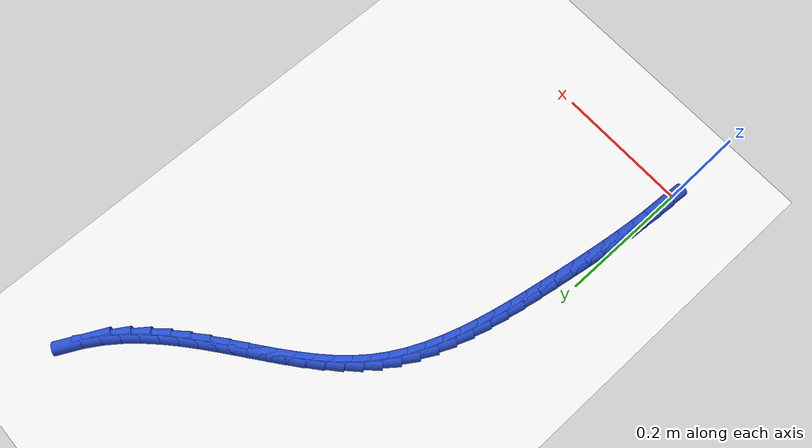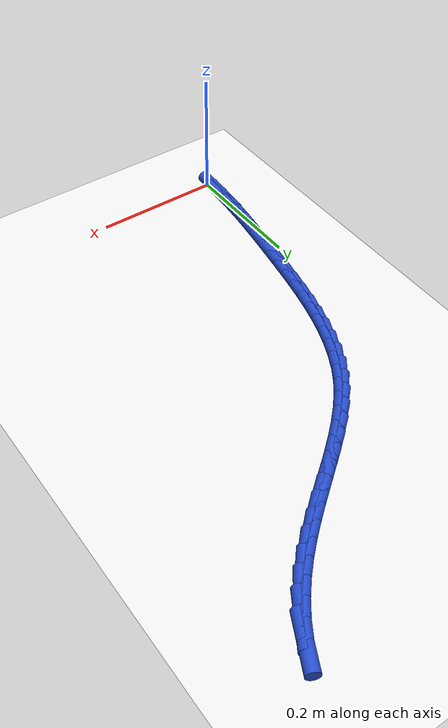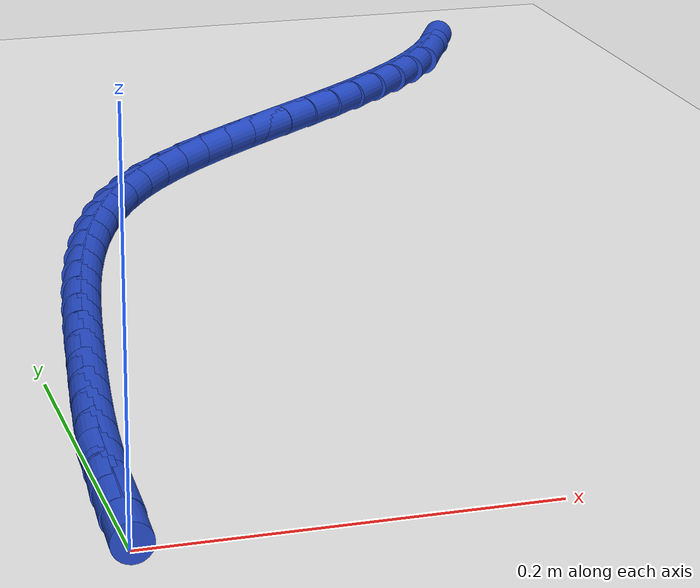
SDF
<sdf version="1.6">
 <world name="default">
  <model name="ground_plane">
   <static>1</static>
   <link name="link">
    <collision name="collision">
     <geometry><plane><normal>0 0 1</normal><size>100 100</size></plane></geometry>
     <surface><friction><ode><mu>100</mu><mu2>50</mu2></ode></friction></surface>
    </collision>
    <visual name="visual">
     <cast_shadows>0</cast_shadows>
     <geometry><plane><normal>0 0 1</normal><size>100 100</size></plane></geometry>
     <material>
      <script><uri>file://media/materials/scripts/gazebo.material</uri><name>Gazebo/WhiteGlow</name></script>
     </material>
    </visual>
   </link>
  </model>
  <model name="line">
   <link name="link_1">
    <pose>0.0009345551304918238 0.026093960901093137 0.01 0 1.57 1.5084178940922301</pose>
    <collision name="collision">
     <geometry><cylinder><radius>0.01</radius><length>0.08</length></cylinder></geometry>
    </collision>
    <visual name="visual">
     <material>
      <script><name>Gazebo/Blue</name><uri>file://media/materials/scripts/gazebo.material</uri></script>
     </material>
     <geometry><cylinder><radius>0.01</radius><length>0.08</length></cylinder></geometry>
    </visual>
   </link>
   <link name="link_2">
    <pose>0.002554962909086989 0.05203731114249139 0.01 0 1.57 1.484605600126524</pose>
    <collision name="collision">
     <geometry><cylinder><radius>0.01</radius><length>0.08</length></cylinder></geometry>
    </collision>
    <visual name="visual">
     <material>
      <script><name>Gazebo/Blue</name><uri>file://media/materials/scripts/gazebo.material</uri></script>
     </material>
     <geometry><cylinder><radius>0.01</radius><length>0.08</length></cylinder></geometry>
    </visual>
   </link>
   <link name="link_3">
    <pose>0.004788108155978377 0.0778824652375783 0.01 0 1.57 1.4637330595707476</pose>
    <collision name="collision">
     <geometry><cylinder><radius>0.01</radius><length>0.08</length></cylinder></geometry>
    </collision>
    <visual name="visual">
     <material>
      <script><name>Gazebo/Blue</name><uri>file://media/materials/scripts/gazebo.material</uri></script>
     </material>
     <geometry><cylinder><radius>0.01</radius><length>0.08</length></cylinder></geometry>
    </visual>
   </link>
   <link name="link_4">
    <pose>0.007560875691358856 0.10368183769973745 0.01 0 1.57 1.445925364941991</pose>
    <collision name="collision">
     <geometry><cylinder><radius>0.01</radius><length>0.08</length></cylinder></geometry>
    </collision>
    <visual name="visual">
     <material>
      <script><name>Gazebo/Blue</name><uri>file://media/materials/scripts/gazebo.material</uri></script>
     </material>
     <geometry><cylinder><radius>0.01</radius><length>0.08</length></cylinder></geometry>
    </visual>
   </link>
   <link name="link_5">
    <pose>0.010800150335421317 0.1294878430423524 0.01 0 1.57 1.4312620993877605</pose>
    <collision name="collision">
     <geometry><cylinder><radius>0.01</radius><length>0.08</length></cylinder></geometry>
    </collision>
    <visual name="visual">
     <material>
      <script><name>Gazebo/Blue</name><uri>file://media/materials/scripts/gazebo.material</uri></script>
     </material>
     <geometry><cylinder><radius>0.01</radius><length>0.08</length></cylinder></geometry>
    </visual>
   </link>
   <link name="link_6">
    <pose>0.014432816908358619 0.15535289577880662 0.01 0 1.57 1.419781155389304</pose>
    <collision name="collision">
     <geometry><cylinder><radius>0.01</radius><length>0.08</length></cylinder></geometry>
    </collision>
    <visual name="visual">
     <material>
      <script><name>Gazebo/Blue</name><uri>file://media/materials/scripts/gazebo.material</uri></script>
     </material>
     <geometry><cylinder><radius>0.01</radius><length>0.08</length></cylinder></geometry>
    </visual>
   </link>
   <link name="link_7">
    <pose>0.018385760230363646 0.18132941042248377 0.01 0 1.57 1.4114830737807074</pose>
    <collision name="collision">
     <geometry><cylinder><radius>0.01</radius><length>0.08</length></cylinder></geometry>
    </collision>
    <visual name="visual">
     <material>
      <script><name>Gazebo/Blue</name><uri>file://media/materials/scripts/gazebo.material</uri></script>
     </material>
     <geometry><cylinder><radius>0.01</radius><length>0.08</length></cylinder></geometry>
    </visual>
   </link>
   <link name="link_8">
    <pose>0.02258586512162927 0.20746980148676736 0.01 0 1.57 1.406204926121847</pose>
    <collision name="collision">
     <geometry><cylinder><radius>0.01</radius><length>0.08</length></cylinder></geometry>
    </collision>
    <visual name="visual">
     <material>
      <script><name>Gazebo/Blue</name><uri>file://media/materials/scripts/gazebo.material</uri></script>
     </material>
     <geometry><cylinder><radius>0.01</radius><length>0.08</length></cylinder></geometry>
    </visual>
   </link>
   <link name="link_9">
    <pose>0.02696309861841557 0.23382376049771153 0.01 0 1.57 1.3995858988335756</pose>
    <collision name="collision">
     <geometry><cylinder><radius>0.01</radius><length>0.08</length></cylinder></geometry>
    </collision>
    <visual name="visual">
     <material>
      <script><name>Gazebo/Blue</name><uri>file://media/materials/scripts/gazebo.material</uri></script>
     </material>
     <geometry><cylinder><radius>0.01</radius><length>0.08</length></cylinder></geometry>
    </visual>
   </link>
   <link name="link_10">
    <pose>0.031549680913267784 0.260350643312851 0.01 0 1.57 1.3864131929045387</pose>
    <collision name="collision">
     <geometry><cylinder><radius>0.01</radius><length>0.08</length></cylinder></geometry>
    </collision>
    <visual name="visual">
     <material>
      <script><name>Gazebo/Blue</name><uri>file://media/materials/scripts/gazebo.material</uri></script>
     </material>
     <geometry><cylinder><radius>0.01</radius><length>0.08</length></cylinder></geometry>
    </visual>
   </link>
   <link name="link_11">
    <pose>0.036501308648437494 0.28690072037821956 0.01 0 1.57 1.366264666740674</pose>
    <collision name="collision">
     <geometry><cylinder><radius>0.01</radius><length>0.08</length></cylinder></geometry>
    </collision>
    <visual name="visual">
     <material>
      <script><name>Gazebo/Blue</name><uri>file://media/materials/scripts/gazebo.material</uri></script>
     </material>
     <geometry><cylinder><radius>0.01</radius><length>0.08</length></cylinder></geometry>
    </visual>
   </link>
   <link name="link_12">
    <pose>0.041981052725971885 0.31331774734155327 0.01 0 1.57 1.3388633902541338</pose>
    <collision name="collision">
     <geometry><cylinder><radius>0.01</radius><length>0.08</length></cylinder></geometry>
    </collision>
    <visual name="visual">
     <material>
      <script><name>Gazebo/Blue</name><uri>file://media/materials/scripts/gazebo.material</uri></script>
     </material>
     <geometry><cylinder><radius>0.01</radius><length>0.08</length></cylinder></geometry>
    </visual>
   </link>
   <link name="link_13">
    <pose>0.048151984047918164 0.33944547985058865 0.01 0 1.57 1.3037849943275877</pose>
    <collision name="collision">
     <geometry><cylinder><radius>0.01</radius><length>0.08</length></cylinder></geometry>
    </collision>
    <visual name="visual">
     <material>
      <script><name>Gazebo/Blue</name><uri>file://media/materials/scripts/gazebo.material</uri></script>
     </material>
     <geometry><cylinder><radius>0.01</radius><length>0.08</length></cylinder></geometry>
    </visual>
   </link>
   <link name="link_14">
    <pose>0.055177173516323515 0.36512767355306164 0.01 0 1.57 1.2604863405628066</pose>
    <collision name="collision">
     <geometry><cylinder><radius>0.01</radius><length>0.08</length></cylinder></geometry>
    </collision>
    <visual name="visual">
     <material>
      <script><name>Gazebo/Blue</name><uri>file://media/materials/scripts/gazebo.material</uri></script>
     </material>
     <geometry><cylinder><radius>0.01</radius><length>0.08</length></cylinder></geometry>
    </visual>
   </link>
   <link name="link_15">
    <pose>0.06321969203323519 0.3902080840967089 0.01 0 1.57 1.2083532021715735</pose>
    <collision name="collision">
     <geometry><cylinder><radius>0.01</radius><length>0.08</length></cylinder></geometry>
    </collision>
    <visual name="visual">
     <material>
      <script><name>Gazebo/Blue</name><uri>file://media/materials/scripts/gazebo.material</uri></script>
     </material>
     <geometry><cylinder><radius>0.01</radius><length>0.08</length></cylinder></geometry>
    </visual>
   </link>
   <link name="link_16">
    <pose>0.07244261050070035 0.4145304671292663 0.01 0 1.57 1.1467799074961422</pose>
    <collision name="collision">
     <geometry><cylinder><radius>0.01</radius><length>0.08</length></cylinder></geometry>
    </collision>
    <visual name="visual">
     <material>
      <script><name>Gazebo/Blue</name><uri>file://media/materials/scripts/gazebo.material</uri></script>
     </material>
     <geometry><cylinder><radius>0.01</radius><length>0.08</length></cylinder></geometry>
    </visual>
   </link>
   <link name="link_17">
    <pose>0.08300899982076619 0.4379385782984703 0.01 0 1.57 1.075294701837149</pose>
    <collision name="collision">
     <geometry><cylinder><radius>0.01</radius><length>0.08</length></cylinder></geometry>
    </collision>
    <visual name="visual">
     <material>
      <script><name>Gazebo/Blue</name><uri>file://media/materials/scripts/gazebo.material</uri></script>
     </material>
     <geometry><cylinder><radius>0.01</radius><length>0.08</length></cylinder></geometry>
    </visual>
   </link>
   <link name="link_18">
    <pose>0.09508193089547992 0.4602761732520572 0.01 0 1.57 0.9937516156851293</pose>
    <collision name="collision">
     <geometry><cylinder><radius>0.01</radius><length>0.08</length></cylinder></geometry>
    </collision>
    <visual name="visual">
     <material>
      <script><name>Gazebo/Blue</name><uri>file://media/materials/scripts/gazebo.material</uri></script>
     </material>
     <geometry><cylinder><radius>0.01</radius><length>0.08</length></cylinder></geometry>
    </visual>
   </link>
   <link name="link_19">
    <pose>0.10882422888578042 0.4813872257412592 0.01 0 1.57 0.9080375376504746</pose>
    <collision name="collision">
     <geometry><cylinder><radius>0.01</radius><length>0.08</length></cylinder></geometry>
    </collision>
    <visual name="visual">
     <material>
      <script><name>Gazebo/Blue</name><uri>file://media/materials/scripts/gazebo.material</uri></script>
     </material>
     <geometry><cylinder><radius>0.01</radius><length>0.08</length></cylinder></geometry>
    </visual>
   </link>
   <link name="link_20">
    <pose>0.12429491190765735 0.5012078417598891 0.01 0 1.57 0.8331925428434346</pose>
    <collision name="collision">
     <geometry><cylinder><radius>0.01</radius><length>0.08</length></cylinder></geometry>
    </collision>
    <visual name="visual">
     <material>
      <script><name>Gazebo/Blue</name><uri>file://media/materials/scripts/gazebo.material</uri></script>
     </material>
     <geometry><cylinder><radius>0.01</radius><length>0.08</length></cylinder></geometry>
    </visual>
   </link>
   <link name="link_21">
    <pose>0.14128857700210487 0.5199088098961528 0.01 0 1.57 0.7720643885398846</pose>
    <collision name="collision">
     <geometry><cylinder><radius>0.01</radius><length>0.08</length></cylinder></geometry>
    </collision>
    <visual name="visual">
     <material>
      <script><name>Gazebo/Blue</name><uri>file://media/materials/scripts/gazebo.material</uri></script>
     </material>
     <geometry><cylinder><radius>0.01</radius><length>0.08</length></cylinder></geometry>
    </visual>
   </link>
   <link name="link_22">
    <pose>0.15955833402631928 0.5376977400087541 0.01 0 1.57 0.7246087713500247</pose>
    <collision name="collision">
     <geometry><cylinder><radius>0.01</radius><length>0.08</length></cylinder></geometry>
    </collision>
    <visual name="visual">
     <material>
      <script><name>Gazebo/Blue</name><uri>file://media/materials/scripts/gazebo.material</uri></script>
     </material>
     <geometry><cylinder><radius>0.01</radius><length>0.08</length></cylinder></geometry>
    </visual>
   </link>
   <link name="link_23">
    <pose>0.17885729283749688 0.5547822419563966 0.01 0 1.57 0.69041117564255</pose>
    <collision name="collision">
     <geometry><cylinder><radius>0.01</radius><length>0.08</length></cylinder></geometry>
    </collision>
    <visual name="visual">
     <material>
      <script><name>Gazebo/Blue</name><uri>file://media/materials/scripts/gazebo.material</uri></script>
     </material>
     <geometry><cylinder><radius>0.01</radius><length>0.08</length></cylinder></geometry>
    </visual>
   </link>
   <link name="link_24">
    <pose>0.198938563292834 0.5713699255977841 0.01 0 1.57 0.66895061508409</pose>
    <collision name="collision">
     <geometry><cylinder><radius>0.01</radius><length>0.08</length></cylinder></geometry>
    </collision>
    <visual name="visual">
     <material>
      <script><name>Gazebo/Blue</name><uri>file://media/materials/scripts/gazebo.material</uri></script>
     </material>
     <geometry><cylinder><radius>0.01</radius><length>0.08</length></cylinder></geometry>
    </visual>
   </link>
   <link name="link_25">
    <pose>0.2195552552495269 0.58766840079162 0.01 0 1.57 0.6597680014727794</pose>
    <collision name="collision">
     <geometry><cylinder><radius>0.01</radius><length>0.08</length></cylinder></geometry>
    </collision>
    <visual name="visual">
     <material>
      <script><name>Gazebo/Blue</name><uri>file://media/materials/scripts/gazebo.material</uri></script>
     </material>
     <geometry><cylinder><radius>0.01</radius><length>0.08</length></cylinder></geometry>
    </visual>
   </link>
   <link name="link_26">
    <pose>0.24046047856477193 0.603885277396608 0.01 0 1.57 0.6625549072321429</pose>
    <collision name="collision">
     <geometry><cylinder><radius>0.01</radius><length>0.08</length></cylinder></geometry>
    </collision>
    <visual name="visual">
     <material>
      <script><name>Gazebo/Blue</name><uri>file://media/materials/scripts/gazebo.material</uri></script>
     </material>
     <geometry><cylinder><radius>0.01</radius><length>0.08</length></cylinder></geometry>
    </visual>
   </link>
   <link name="link_27">
    <pose>0.26140734309576535 0.6202281652714523 0.01 0 1.57 0.677182534440346</pose>
    <collision name="collision">
     <geometry><cylinder><radius>0.01</radius><length>0.08</length></cylinder></geometry>
    </collision>
    <visual name="visual">
     <material>
      <script><name>Gazebo/Blue</name><uri>file://media/materials/scripts/gazebo.material</uri></script>
     </material>
     <geometry><cylinder><radius>0.01</radius><length>0.08</length></cylinder></geometry>
    </visual>
   </link>
   <link name="link_28">
    <pose>0.28214895869970336 0.6369046742748554 0.01 0 1.57 0.7036833149951631</pose>
    <collision name="collision">
     <geometry><cylinder><radius>0.01</radius><length>0.08</length></cylinder></geometry>
    </collision>
    <visual name="visual">
     <material>
      <script><name>Gazebo/Blue</name><uri>file://media/materials/scripts/gazebo.material</uri></script>
     </material>
     <geometry><cylinder><radius>0.01</radius><length>0.08</length></cylinder></geometry>
    </visual>
   </link>
   <link name="link_29">
    <pose>0.3024384352337828 0.6541224142655224 0.01 0 1.57 0.7421877238234136</pose>
    <collision name="collision">
     <geometry><cylinder><radius>0.01</radius><length>0.08</length></cylinder></geometry>
    </collision>
    <visual name="visual">
     <material>
      <script><name>Gazebo/Blue</name><uri>file://media/materials/scripts/gazebo.material</uri></script>
     </material>
     <geometry><cylinder><radius>0.01</radius><length>0.08</length></cylinder></geometry>
    </visual>
   </link>
   <link name="link_30">
    <pose>0.3220288825551993 0.6720889951021563 0.01 0 1.57 0.7928114337062153</pose>
    <collision name="collision">
     <geometry><cylinder><radius>0.01</radius><length>0.08</length></cylinder></geometry>
    </collision>
    <visual name="visual">
     <material>
      <script><name>Gazebo/Blue</name><uri>file://media/materials/scripts/gazebo.material</uri></script>
     </material>
     <geometry><cylinder><radius>0.01</radius><length>0.08</length></cylinder></geometry>
    </visual>
   </link>
   <link name="link_31">
    <pose>0.3406734105211495 0.6910120266434608 0.01 0 1.57 0.8554871403688812</pose>
    <collision name="collision">
     <geometry><cylinder><radius>0.01</radius><length>0.08</length></cylinder></geometry>
    </collision>
    <visual name="visual">
     <material>
      <script><name>Gazebo/Blue</name><uri>file://media/materials/scripts/gazebo.material</uri></script>
     </material>
     <geometry><cylinder><radius>0.01</radius><length>0.08</length></cylinder></geometry>
    </visual>
   </link>
   <link name="link_32">
    <pose>0.35812512898882964 0.7110991187481395 0.01 0 1.57 0.9297469166885302</pose>
    <collision name="collision">
     <geometry><cylinder><radius>0.01</radius><length>0.08</length></cylinder></geometry>
    </collision>
    <visual name="visual">
     <material>
      <script><name>Gazebo/Blue</name><uri>file://media/materials/scripts/gazebo.material</uri></script>
     </material>
     <geometry><cylinder><radius>0.01</radius><length>0.08</length></cylinder></geometry>
    </visual>
   </link>
   <link name="link_33">
    <pose>0.3741371478154362 0.7325578812748964 0.01 0 1.57 1.0144897370281505</pose>
    <collision name="collision">
     <geometry><cylinder><radius>0.01</radius><length>0.08</length></cylinder></geometry>
    </collision>
    <visual name="visual">
     <material>
      <script><name>Gazebo/Blue</name><uri>file://media/materials/scripts/gazebo.material</uri></script>
     </material>
     <geometry><cylinder><radius>0.01</radius><length>0.08</length></cylinder></geometry>
    </visual>
   </link>
   <link name="link_34">
    <pose>0.3884625768581652 0.7555959240824348 0.01 0 1.57 1.1078101218638767</pose>
    <collision name="collision">
     <geometry><cylinder><radius>0.01</radius><length>0.08</length></cylinder></geometry>
    </collision>
    <visual name="visual">
     <material>
      <script><name>Gazebo/Blue</name><uri>file://media/materials/scripts/gazebo.material</uri></script>
     </material>
     <geometry><cylinder><radius>0.01</radius><length>0.08</length></cylinder></geometry>
    </visual>
   </link>
   <link name="link_282">
    <pose>0.0026264226124910446 0.05184783776000306 0.01 0 1.57 1.5201832317597102</pose>
    <collision name="collision">
     <geometry><cylinder><radius>0.01</radius><length>0.08</length></cylinder></geometry>
    </collision>
    <visual name="visual">
     <material>
      <script><name>Gazebo/Blue</name><uri>file://media/materials/scripts/gazebo.material</uri></script>
     </material>
     <geometry><cylinder><radius>0.01</radius><length>0.08</length></cylinder></geometry>
    </visual>
   </link>
  </model>
 </world>
</sdf>
